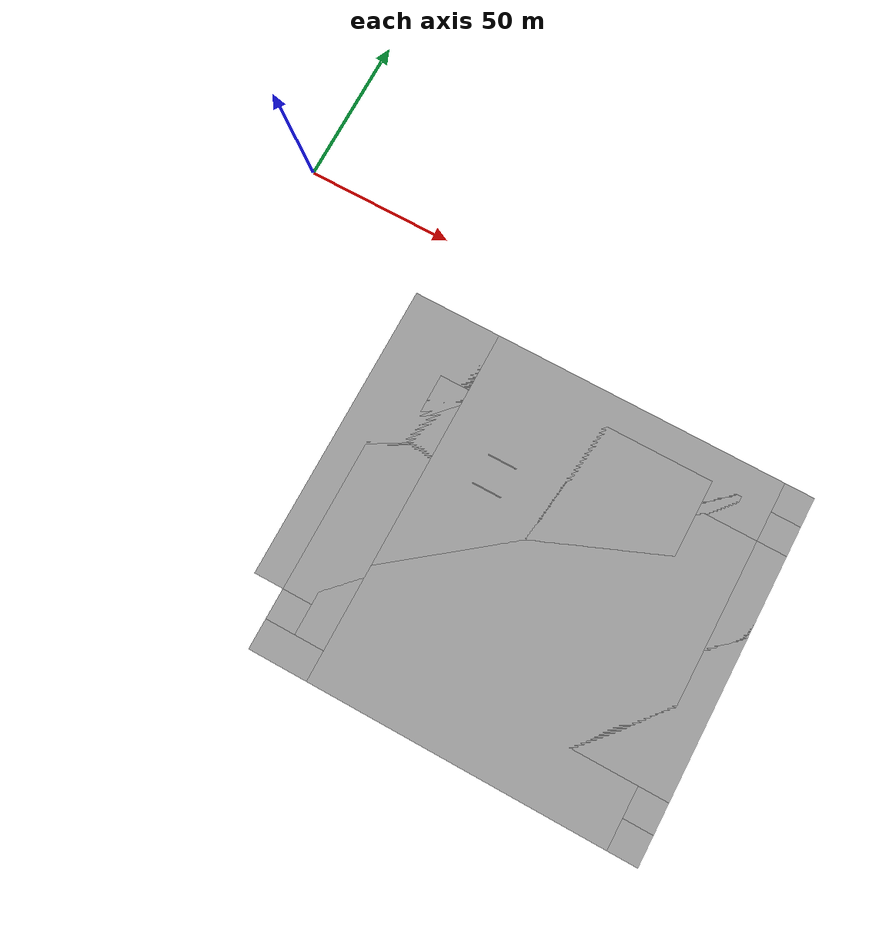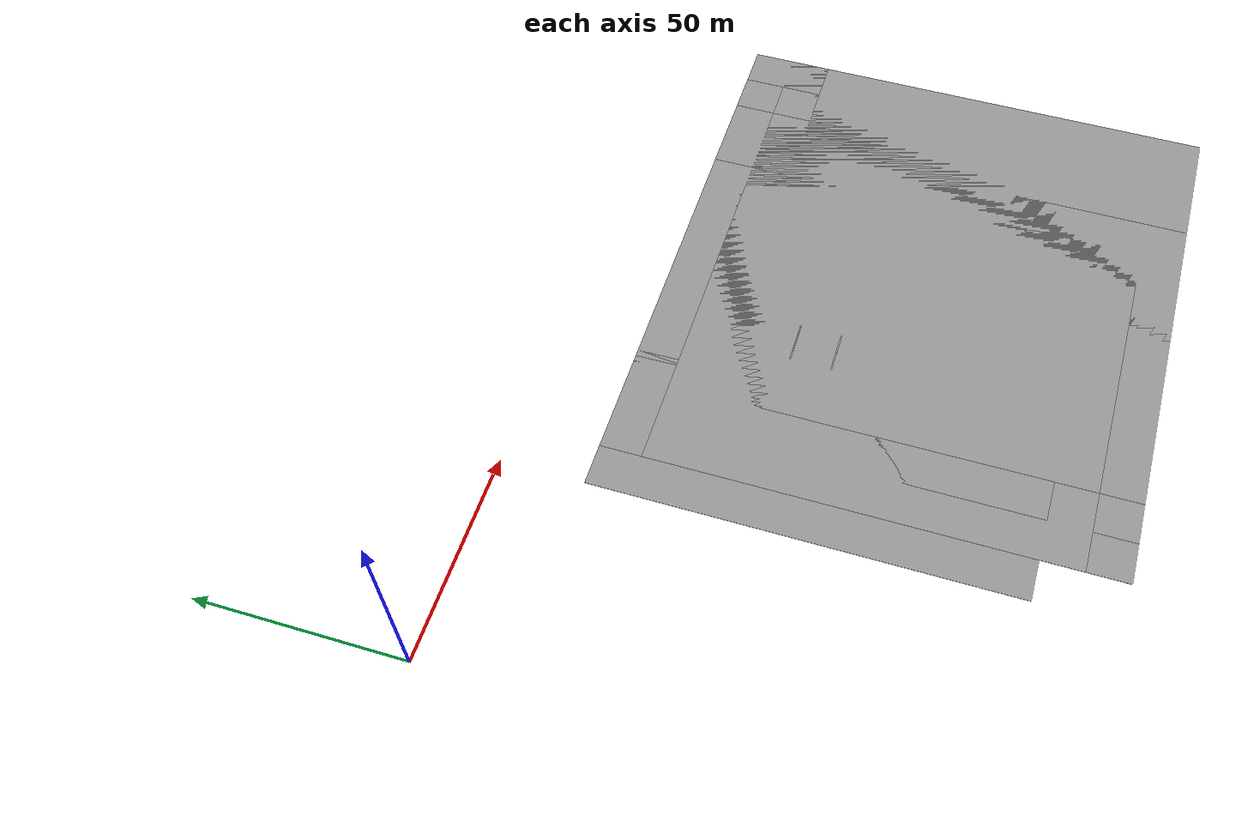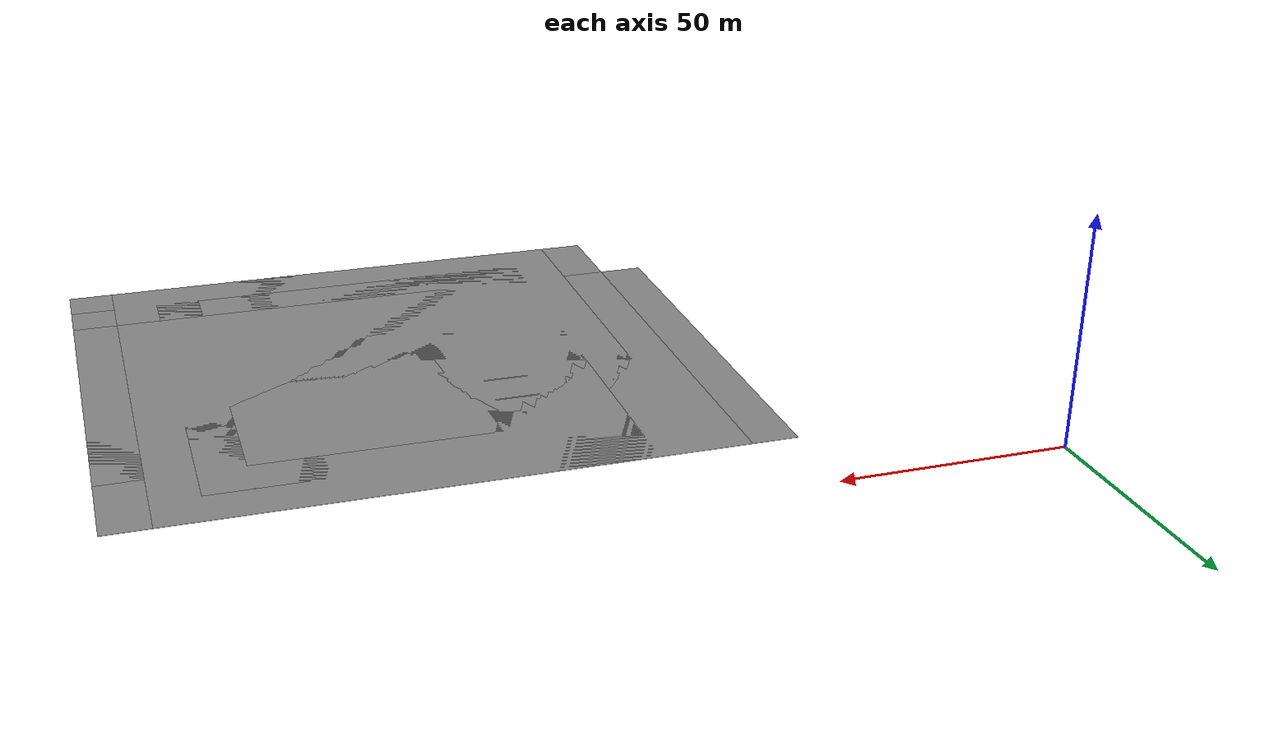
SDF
<sdf version="1.6">
 <world name="road_test">
  <model name="road_straight_6_10">
   <static>1</static>
   <link name="road_straight::link">
    <collision name="collision">
     <geometry><plane><normal>0 0 1</normal><size>10 10</size></plane></geometry>
     <surface><friction><ode><mu>75</mu><mu2>75</mu2></ode></friction></surface>
    </collision>
    <visual name="visual">
     <cast_shadows>0</cast_shadows>
     <geometry><plane><normal>0 0 1</normal><size>10 10</size></plane></geometry>
     <material>
      <script>
       <uri>model://road_straight/materials/scripts</uri>
       <uri>model://road_straight/materials/textures</uri>
       <name>road_straight/Image</name>
      </script>
     </material>
    </visual>
   </link>
   <pose>100 -60 0.02 0 -0 0</pose>
  </model>
  <model name="curb_straight_6_10">
   <link name="curb_staight::Wall_5">
    <collision name="Wall_5_Collision">
     <geometry><box><size>10 0.3 0.22</size></box></geometry>
     <pose>0 -5 0 0 -0 0</pose>
    </collision>
    <visual name="Wall_5_Visual">
     <pose>0 -5 0 0 -0 0</pose>
     <geometry><box><size>10 0.3 0.22</size></box></geometry>
     <material>
      <script><uri>file://media/materials/scripts/gazebo.material</uri><name>Gazebo/Grey</name></script>
      <ambient>1 1 1 1</ambient>
     </material>
     <meta><layer>0</layer></meta>
    </visual>
   </link>
   <link name="curb_staight::Wall_7">
    <collision name="Wall_7_Collision">
     <geometry><box><size>10 0.3 0.22</size></box></geometry>
     <pose>0 5 0 0 -0 0</pose>
    </collision>
    <visual name="Wall_7_Visual">
     <pose>0 5 0 0 -0 0</pose>
     <geometry><box><size>10 0.3 0.22</size></box></geometry>
     <material>
      <script><uri>file://media/materials/scripts/gazebo.material</uri><name>Gazebo/Grey</name></script>
      <ambient>1 1 1 1</ambient>
     </material>
     <meta><layer>0</layer></meta>
    </visual>
   </link>
   <static>1</static>
   <pose>100 -60 0.02 0 -0 0</pose>
  </model>
  <model name="road_straight_6_11">
   <static>1</static>
   <link name="road_straight::link">
    <collision name="collision">
     <geometry><plane><normal>0 0 1</normal><size>10 10</size></plane></geometry>
     <surface><friction><ode><mu>75</mu><mu2>75</mu2></ode></friction></surface>
    </collision>
    <visual name="visual">
     <cast_shadows>0</cast_shadows>
     <geometry><plane><normal>0 0 1</normal><size>10 10</size></plane></geometry>
     <material>
      <script>
       <uri>model://road_straight/materials/scripts</uri>
       <uri>model://road_straight/materials/textures</uri>
       <name>road_straight/Image</name>
      </script>
     </material>
    </visual>
   </link>
   <pose>110 -60 0.02 0 -0 0</pose>
  </model>
  <model name="ground_plane_7_10">
   <static>1</static>
   <link name="ground_plane::link">
    <collision name="collision">
     <geometry><plane><normal>0 0 1</normal><size>100 100</size></plane></geometry>
     <surface><friction><ode><mu>100</mu><mu2>50</mu2></ode></friction></surface>
    </collision>
    <visual name="visual">
     <cast_shadows>0</cast_shadows>
     <geometry><plane><normal>0 0 1</normal><size>100 100</size></plane></geometry>
     <material>
      <script><uri>file://media/materials/scripts/gazebo.material</uri><name>Gazebo/Grey</name></script>
     </material>
    </visual>
   </link>
   <pose>100 -70 0 0 -0 0</pose>
  </model>
  <model name="ground_plane_7_11">
   <static>1</static>
   <link name="ground_plane::link">
    <collision name="collision">
     <geometry><plane><normal>0 0 1</normal><size>100 100</size></plane></geometry>
     <surface><friction><ode><mu>100</mu><mu2>50</mu2></ode></friction></surface>
    </collision>
    <visual name="visual">
     <cast_shadows>0</cast_shadows>
     <geometry><plane><normal>0 0 1</normal><size>100 100</size></plane></geometry>
     <material>
      <script><uri>file://media/materials/scripts/gazebo.material</uri><name>Gazebo/Grey</name></script>
     </material>
    </visual>
   </link>
   <pose>110 -70 0 0 -0 0</pose>
  </model>
  <model name="ground_plane_7_12">
   <static>1</static>
   <link name="ground_plane::link">
    <collision name="collision">
     <geometry><plane><normal>0 0 1</normal><size>100 100</size></plane></geometry>
     <surface><friction><ode><mu>100</mu><mu2>50</mu2></ode></friction></surface>
    </collision>
    <visual name="visual">
     <cast_shadows>0</cast_shadows>
     <geometry><plane><normal>0 0 1</normal><size>100 100</size></plane></geometry>
     <material>
      <script><uri>file://media/materials/scripts/gazebo.material</uri><name>Gazebo/Grey</name></script>
     </material>
    </visual>
   </link>
   <pose>120 -70 0 0 -0 0</pose>
  </model>
  <model name="ground_plane_7_13">
   <static>1</static>
   <link name="ground_plane::link">
    <collision name="collision">
     <geometry><plane><normal>0 0 1</normal><size>100 100</size></plane></geometry>
     <surface><friction><ode><mu>100</mu><mu2>50</mu2></ode></friction></surface>
    </collision>
    <visual name="visual">
     <cast_shadows>0</cast_shadows>
     <geometry><plane><normal>0 0 1</normal><size>100 100</size></plane></geometry>
     <material>
      <script><uri>file://media/materials/scripts/gazebo.material</uri><name>Gazebo/Grey</name></script>
     </material>
    </visual>
   </link>
   <pose>130 -70 0 0 -0 0</pose>
  </model>
  <model name="ground_plane_7_14">
   <static>1</static>
   <link name="ground_plane::link">
    <collision name="collision">
     <geometry><plane><normal>0 0 1</normal><size>100 100</size></plane></geometry>
     <surface><friction><ode><mu>100</mu><mu2>50</mu2></ode></friction></surface>
    </collision>
    <visual name="visual">
     <cast_shadows>0</cast_shadows>
     <geometry><plane><normal>0 0 1</normal><size>100 100</size></plane></geometry>
     <material>
      <script><uri>file://media/materials/scripts/gazebo.material</uri><name>Gazebo/Grey</name></script>
     </material>
    </visual>
   </link>
   <pose>140 -70 0 0 -0 0</pose>
  </model>
  <model name="ground_plane_8_11">
   <static>1</static>
   <link name="ground_plane::link">
    <collision name="collision">
     <geometry><plane><normal>0 0 1</normal><size>100 100</size></plane></geometry>
     <surface><friction><ode><mu>100</mu><mu2>50</mu2></ode></friction></surface>
    </collision>
    <visual name="visual">
     <cast_shadows>0</cast_shadows>
     <geometry><plane><normal>0 0 1</normal><size>100 100</size></plane></geometry>
     <material>
      <script><uri>file://media/materials/scripts/gazebo.material</uri><name>Gazebo/Grey</name></script>
     </material>
    </visual>
   </link>
   <pose>110 -80 0 0 -0 0</pose>
  </model>
  <model name="ground_plane_8_12">
   <static>1</static>
   <link name="ground_plane::link">
    <collision name="collision">
     <geometry><plane><normal>0 0 1</normal><size>100 100</size></plane></geometry>
     <surface><friction><ode><mu>100</mu><mu2>50</mu2></ode></friction></surface>
    </collision>
    <visual name="visual">
     <cast_shadows>0</cast_shadows>
     <geometry><plane><normal>0 0 1</normal><size>100 100</size></plane></geometry>
     <material>
      <script><uri>file://media/materials/scripts/gazebo.material</uri><name>Gazebo/Grey</name></script>
     </material>
    </visual>
   </link>
   <pose>120 -80 0 0 -0 0</pose>
  </model>
  <model name="ground_plane_8_13">
   <static>1</static>
   <link name="ground_plane::link">
    <collision name="collision">
     <geometry><plane><normal>0 0 1</normal><size>100 100</size></plane></geometry>
     <surface><friction><ode><mu>100</mu><mu2>50</mu2></ode></friction></surface>
    </collision>
    <visual name="visual">
     <cast_shadows>0</cast_shadows>
     <geometry><plane><normal>0 0 1</normal><size>100 100</size></plane></geometry>
     <material>
      <script><uri>file://media/materials/scripts/gazebo.material</uri><name>Gazebo/Grey</name></script>
     </material>
    </visual>
   </link>
   <pose>130 -80 0 0 -0 0</pose>
  </model>
  <model name="ground_plane_8_14">
   <static>1</static>
   <link name="ground_plane::link">
    <collision name="collision">
     <geometry><plane><normal>0 0 1</normal><size>100 100</size></plane></geometry>
     <surface><friction><ode><mu>100</mu><mu2>50</mu2></ode></friction></surface>
    </collision>
    <visual name="visual">
     <cast_shadows>0</cast_shadows>
     <geometry><plane><normal>0 0 1</normal><size>100 100</size></plane></geometry>
     <material>
      <script><uri>file://media/materials/scripts/gazebo.material</uri><name>Gazebo/Grey</name></script>
     </material>
    </visual>
   </link>
   <pose>140 -80 0 0 -0 0</pose>
  </model>
  <model name="ground_plane_9_11">
   <static>1</static>
   <link name="ground_plane::link">
    <collision name="collision">
     <geometry><plane><normal>0 0 1</normal><size>100 100</size></plane></geometry>
     <surface><friction><ode><mu>100</mu><mu2>50</mu2></ode></friction></surface>
    </collision>
    <visual name="visual">
     <cast_shadows>0</cast_shadows>
     <geometry><plane><normal>0 0 1</normal><size>100 100</size></plane></geometry>
     <material>
      <script><uri>file://media/materials/scripts/gazebo.material</uri><name>Gazebo/Grey</name></script>
     </material>
    </visual>
   </link>
   <pose>110 -90 0 0 -0 0</pose>
  </model>
  <model name="ground_plane_9_12">
   <static>1</static>
   <link name="ground_plane::link">
    <collision name="collision">
     <geometry><plane><normal>0 0 1</normal><size>100 100</size></plane></geometry>
     <surface><friction><ode><mu>100</mu><mu2>50</mu2></ode></friction></surface>
    </collision>
    <visual name="visual">
     <cast_shadows>0</cast_shadows>
     <geometry><plane><normal>0 0 1</normal><size>100 100</size></plane></geometry>
     <material>
      <script><uri>file://media/materials/scripts/gazebo.material</uri><name>Gazebo/Grey</name></script>
     </material>
    </visual>
   </link>
   <pose>120 -90 0 0 -0 0</pose>
  </model>
  <model name="ground_plane_9_13">
   <static>1</static>
   <link name="ground_plane::link">
    <collision name="collision">
     <geometry><plane><normal>0 0 1</normal><size>100 100</size></plane></geometry>
     <surface><friction><ode><mu>100</mu><mu2>50</mu2></ode></friction></surface>
    </collision>
    <visual name="visual">
     <cast_shadows>0</cast_shadows>
     <geometry><plane><normal>0 0 1</normal><size>100 100</size></plane></geometry>
     <material>
      <script><uri>file://media/materials/scripts/gazebo.material</uri><name>Gazebo/Grey</name></script>
     </material>
    </visual>
   </link>
   <pose>130 -90 0 0 -0 0</pose>
  </model>
  <model name="ground_plane_9_14">
   <static>1</static>
   <link name="ground_plane::link">
    <collision name="collision">
     <geometry><plane><normal>0 0 1</normal><size>100 100</size></plane></geometry>
     <surface><friction><ode><mu>100</mu><mu2>50</mu2></ode></friction></surface>
    </collision>
    <visual name="visual">
     <cast_shadows>0</cast_shadows>
     <geometry><plane><normal>0 0 1</normal><size>100 100</size></plane></geometry>
     <material>
      <script><uri>file://media/materials/scripts/gazebo.material</uri><name>Gazebo/Grey</name></script>
     </material>
    </visual>
   </link>
   <pose>140 -90 0 0 -0 0</pose>
  </model>
 </world>
</sdf>
